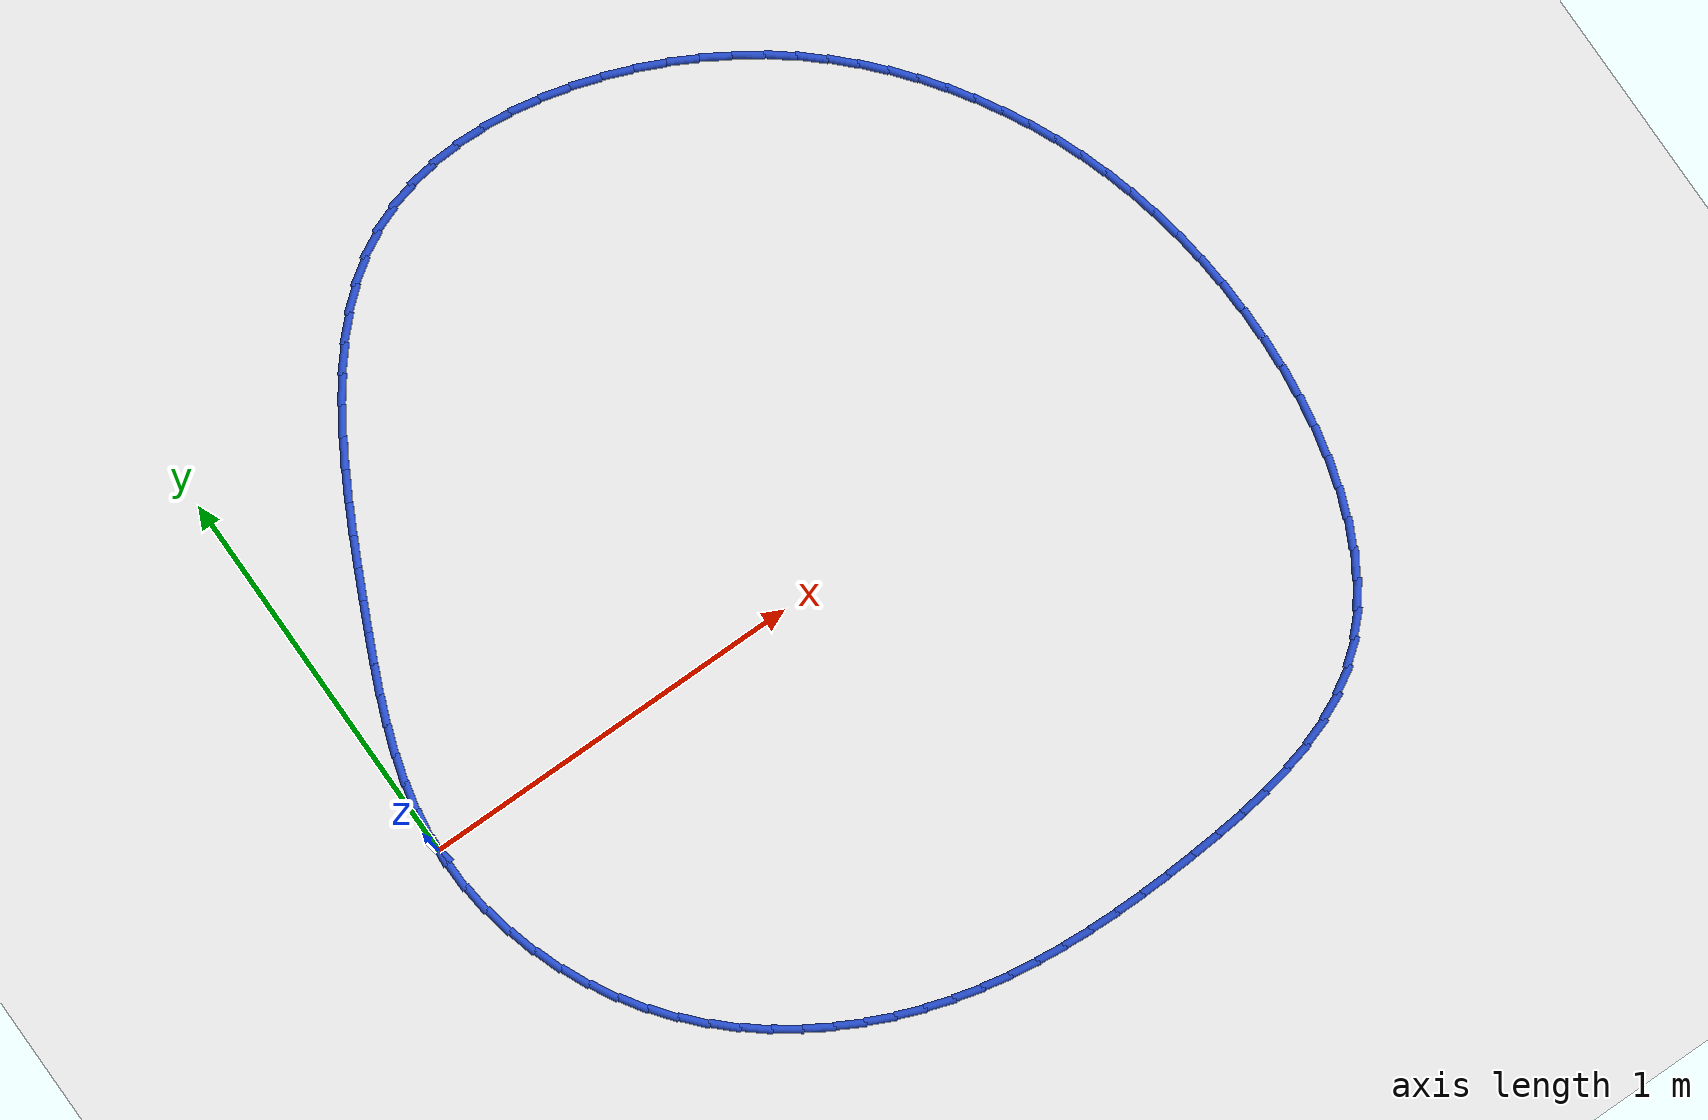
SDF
<sdf version="1.6">
 <world name="default">
  <light name="sun" type="directional">
   <pose>0 0 10 0 -0 0</pose>
   <diffuse>0.8 0.8 0.8 1</diffuse>
   <specular>0.2 0.2 0.2 1</specular>
   <attenuation>
    <range>1000</range>
    <constant>0.9</constant>
    <linear>0.01</linear>
    <quadratic>0.001</quadratic>
   </attenuation>
   <direction>-0.5 0.1 -0.9</direction>
  </light>
  <model name="ground_plane">
   <static>1</static>
   <link name="link">
    <collision name="collision">
     <geometry><plane><normal>0 0 1</normal><size>100 100</size></plane></geometry>
     <surface><friction><ode><mu>100</mu><mu2>50</mu2></ode></friction></surface>
    </collision>
    <visual name="visual">
     <cast_shadows>0</cast_shadows>
     <geometry><plane><normal>0 0 1</normal><size>100 100</size></plane></geometry>
     <material>
      <script><uri>file://media/materials/scripts/gazebo.material</uri><name>Gazebo/WhiteGlow</name></script>
     </material>
    </visual>
   </link>
  </model>
  <gravity>0 0 -9.8</gravity>
  <magnetic_field>6e-06 2.3e-05 -4.2e-05</magnetic_field>
  <atmosphere type="adiabatic"/>
  <physics name="default_physics" default="0" type="ode">
   <max_step_size>0.001</max_step_size>
   <real_time_factor>1</real_time_factor>
   <real_time_update_rate>1000</real_time_update_rate>
  </physics>
  <scene><ambient>0.4 0.4 0.4 1</ambient><background>0.7 0.7 0.7 1</background><shadows>1</shadows></scene>
  <spherical_coordinates>
   <surface_model>EARTH_WGS84</surface_model>
   <latitude_deg>0</latitude_deg>
   <longitude_deg>0</longitude_deg>
   <elevation>0</elevation>
   <heading_deg>0</heading_deg>
  </spherical_coordinates>
  <model name="line">
   <link name="link_0">
    <pose>9.71445146547012e-17 -8.326672684688674e-17 0.01 0 1.57 1.4866478548702864</pose>
    <collision name="collision">
     <geometry><cylinder><radius>0.01</radius><length>0.08</length></cylinder></geometry>
    </collision>
    <visual name="visual">
     <material>
      <script><name>Gazebo/Blue</name><uri>file://media/materials/scripts/gazebo.material</uri></script>
     </material>
     <geometry><cylinder><radius>0.01</radius><length>0.08</length></cylinder></geometry>
    </visual>
   </link>
   <link name="link_1">
    <pose>0.005993046967732487 0.07105173308109611 0.01 0 1.57 1.4015986962122502</pose>
    <collision name="collision">
     <geometry><cylinder><radius>0.01</radius><length>0.08</length></cylinder></geometry>
    </collision>
    <visual name="visual">
     <material>
      <script><name>Gazebo/Blue</name><uri>file://media/materials/scripts/gazebo.material</uri></script>
     </material>
     <geometry><cylinder><radius>0.01</radius><length>0.08</length></cylinder></geometry>
    </visual>
   </link>
   <link name="link_2">
    <pose>0.01796786469366333 0.14114921584021753 0.01 0 1.57 1.3272505205238498</pose>
    <collision name="collision">
     <geometry><cylinder><radius>0.01</radius><length>0.08</length></cylinder></geometry>
    </collision>
    <visual name="visual">
     <material>
      <script><name>Gazebo/Blue</name><uri>file://media/materials/scripts/gazebo.material</uri></script>
     </material>
     <geometry><cylinder><radius>0.01</radius><length>0.08</length></cylinder></geometry>
    </visual>
   </link>
   <link name="link_3">
    <pose>0.03520866146708669 0.21053478517167437 0.01 0 1.57 1.2645475346408444</pose>
    <collision name="collision">
     <geometry><cylinder><radius>0.01</radius><length>0.08</length></cylinder></geometry>
    </collision>
    <visual name="visual">
     <material>
      <script><name>Gazebo/Blue</name><uri>file://media/materials/scripts/gazebo.material</uri></script>
     </material>
     <geometry><cylinder><radius>0.01</radius><length>0.08</length></cylinder></geometry>
    </visual>
   </link>
   <link name="link_4">
    <pose>0.056999645577296726 0.279450777969777 0.01 0 1.57 1.2137230448544736</pose>
    <collision name="collision">
     <geometry><cylinder><radius>0.01</radius><length>0.08</length></cylinder></geometry>
    </collision>
    <visual name="visual">
     <material>
      <script><name>Gazebo/Blue</name><uri>file://media/materials/scripts/gazebo.material</uri></script>
     </material>
     <geometry><cylinder><radius>0.01</radius><length>0.08</length></cylinder></geometry>
    </visual>
   </link>
   <link name="link_5">
    <pose>0.08262502531358754 0.34813953112883583 0.01 0 1.57 1.174550342355736</pose>
    <collision name="collision">
     <geometry><cylinder><radius>0.01</radius><length>0.08</length></cylinder></geometry>
    </collision>
    <visual name="visual">
     <material>
      <script><name>Gazebo/Blue</name><uri>file://media/materials/scripts/gazebo.material</uri></script>
     </material>
     <geometry><cylinder><radius>0.01</radius><length>0.08</length></cylinder></geometry>
    </visual>
   </link>
   <link name="link_6">
    <pose>0.11136900896525315 0.4168433815431606 0.01 0 1.57 1.1465659076733152</pose>
    <collision name="collision">
     <geometry><cylinder><radius>0.01</radius><length>0.08</length></cylinder></geometry>
    </collision>
    <visual name="visual">
     <material>
      <script><name>Gazebo/Blue</name><uri>file://media/materials/scripts/gazebo.material</uri></script>
     </material>
     <geometry><cylinder><radius>0.01</radius><length>0.08</length></cylinder></geometry>
    </visual>
   </link>
   <link name="link_7">
    <pose>0.1425158048215878 0.4858046661070621 0.01 0 1.57 1.1292312527885653</pose>
    <collision name="collision">
     <geometry><cylinder><radius>0.01</radius><length>0.08</length></cylinder></geometry>
    </collision>
    <visual name="visual">
     <material>
      <script><name>Gazebo/Blue</name><uri>file://media/materials/scripts/gazebo.material</uri></script>
     </material>
     <geometry><cylinder><radius>0.01</radius><length>0.08</length></cylinder></geometry>
    </visual>
   </link>
   <link name="link_8">
    <pose>0.17534962117188546 0.5552657217148503 0.01 0 1.57 1.1216077876428645</pose>
    <collision name="collision">
     <geometry><cylinder><radius>0.01</radius><length>0.08</length></cylinder></geometry>
    </collision>
    <visual name="visual">
     <material>
      <script><name>Gazebo/Blue</name><uri>file://media/materials/scripts/gazebo.material</uri></script>
     </material>
     <geometry><cylinder><radius>0.01</radius><length>0.08</length></cylinder></geometry>
    </visual>
   </link>
   <link name="link_9">
    <pose>0.2091798786057385 0.6254450209490037 0.01 0 1.57 1.1150377904198732</pose>
    <collision name="collision">
     <geometry><cylinder><radius>0.01</radius><length>0.08</length></cylinder></geometry>
    </collision>
    <visual name="visual">
     <material>
      <script><name>Gazebo/Blue</name><uri>file://media/materials/scripts/gazebo.material</uri></script>
     </material>
     <geometry><cylinder><radius>0.01</radius><length>0.08</length></cylinder></geometry>
    </visual>
   </link>
   <link name="link_10">
    <pose>0.24381008606908058 0.696093364721075 0.01 0 1.57 1.1018985038633107</pose>
    <collision name="collision">
     <geometry><cylinder><radius>0.01</radius><length>0.08</length></cylinder></geometry>
    </collision>
    <visual name="visual">
     <material>
      <script><name>Gazebo/Blue</name><uri>file://media/materials/scripts/gazebo.material</uri></script>
     </material>
     <geometry><cylinder><radius>0.01</radius><length>0.08</length></cylinder></geometry>
    </visual>
   </link>
   <link name="link_11">
    <pose>0.2794944115478817 0.7665349896175002 0.01 0 1.57 1.081743589944259</pose>
    <collision name="collision">
     <geometry><cylinder><radius>0.01</radius><length>0.08</length></cylinder></geometry>
    </collision>
    <visual name="visual">
     <material>
      <script><name>Gazebo/Blue</name><uri>file://media/materials/scripts/gazebo.material</uri></script>
     </material>
     <geometry><cylinder><radius>0.01</radius><length>0.08</length></cylinder></geometry>
    </visual>
   </link>
   <link name="link_12">
    <pose>0.3165035264108373 0.8360785112037452 0.01 0 1.57 1.0541642760594225</pose>
    <collision name="collision">
     <geometry><cylinder><radius>0.01</radius><length>0.08</length></cylinder></geometry>
    </collision>
    <visual name="visual">
     <material>
      <script><name>Gazebo/Blue</name><uri>file://media/materials/scripts/gazebo.material</uri></script>
     </material>
     <geometry><cylinder><radius>0.01</radius><length>0.08</length></cylinder></geometry>
    </visual>
   </link>
   <link name="link_13">
    <pose>0.3551081020266431 0.9040325450452766 0.01 0 1.57 1.0185180773923552</pose>
    <collision name="collision">
     <geometry><cylinder><radius>0.01</radius><length>0.08</length></cylinder></geometry>
    </collision>
    <visual name="visual">
     <material>
      <script><name>Gazebo/Blue</name><uri>file://media/materials/scripts/gazebo.material</uri></script>
     </material>
     <geometry><cylinder><radius>0.01</radius><length>0.08</length></cylinder></geometry>
    </visual>
   </link>
   <link name="link_14">
    <pose>0.3955788097639943 0.9697057067075598 0.01 0 1.57 0.9739371436720542</pose>
    <collision name="collision">
     <geometry><cylinder><radius>0.01</radius><length>0.08</length></cylinder></geometry>
    </collision>
    <visual name="visual">
     <material>
      <script><name>Gazebo/Blue</name><uri>file://media/materials/scripts/gazebo.material</uri></script>
     </material>
     <geometry><cylinder><radius>0.01</radius><length>0.08</length></cylinder></geometry>
    </visual>
   </link>
   <link name="link_15">
    <pose>0.43818632099158633 1.0324066117560615 0.01 0 1.57 0.9193530361669444</pose>
    <collision name="collision">
     <geometry><cylinder><radius>0.01</radius><length>0.08</length></cylinder></geometry>
    </collision>
    <visual name="visual">
     <material>
      <script><name>Gazebo/Blue</name><uri>file://media/materials/scripts/gazebo.material</uri></script>
     </material>
     <geometry><cylinder><radius>0.01</radius><length>0.08</length></cylinder></geometry>
    </visual>
   </link>
   <link name="link_16">
    <pose>0.48320130707811504 1.091443875756248 0.01 0 1.57 0.8535618080151993</pose>
    <collision name="collision">
     <geometry><cylinder><radius>0.01</radius><length>0.08</length></cylinder></geometry>
    </collision>
    <visual name="visual">
     <material>
      <script><name>Gazebo/Blue</name><uri>file://media/materials/scripts/gazebo.material</uri></script>
     </material>
     <geometry><cylinder><radius>0.01</radius><length>0.08</length></cylinder></geometry>
    </visual>
   </link>
   <link name="link_17">
    <pose>0.5308944393922758 1.146126114273585 0.01 0 1.57 0.775365157420219</pose>
    <collision name="collision">
     <geometry><cylinder><radius>0.01</radius><length>0.08</length></cylinder></geometry>
    </collision>
    <visual name="visual">
     <material>
      <script><name>Gazebo/Blue</name><uri>file://media/materials/scripts/gazebo.material</uri></script>
     </material>
     <geometry><cylinder><radius>0.01</radius><length>0.08</length></cylinder></geometry>
    </visual>
   </link>
   <link name="link_18">
    <pose>0.5815363893027636 1.1957619428735387 0.01 0 1.57 0.6838313230106244</pose>
    <collision name="collision">
     <geometry><cylinder><radius>0.01</radius><length>0.08</length></cylinder></geometry>
    </collision>
    <visual name="visual">
     <material>
      <script><name>Gazebo/Blue</name><uri>file://media/materials/scripts/gazebo.material</uri></script>
     </material>
     <geometry><cylinder><radius>0.01</radius><length>0.08</length></cylinder></geometry>
    </visual>
   </link>
   <link name="link_19">
    <pose>0.6353978281782746 1.2396599771215755 0.01 0 1.57 0.5787044840958211</pose>
    <collision name="collision">
     <geometry><cylinder><radius>0.01</radius><length>0.08</length></cylinder></geometry>
    </collision>
    <visual name="visual">
     <material>
      <script><name>Gazebo/Blue</name><uri>file://media/materials/scripts/gazebo.material</uri></script>
     </material>
     <geometry><cylinder><radius>0.01</radius><length>0.08</length></cylinder></geometry>
    </visual>
   </link>
   <link name="link_20">
    <pose>0.6927494273875041 1.2771288325831616 0.01 0 1.57 0.4609276006622969</pose>
    <collision name="collision">
     <geometry><cylinder><radius>0.01</radius><length>0.08</length></cylinder></geometry>
    </collision>
    <visual name="visual">
     <material>
      <script><name>Gazebo/Blue</name><uri>file://media/materials/scripts/gazebo.material</uri></script>
     </material>
     <geometry><cylinder><radius>0.01</radius><length>0.08</length></cylinder></geometry>
    </visual>
   </link>
   <link name="link_21">
    <pose>0.7538616121994801 1.3074774246134573 0.01 0 1.57 0.33738711123204745</pose>
    <collision name="collision">
     <geometry><cylinder><radius>0.01</radius><length>0.08</length></cylinder></geometry>
    </collision>
    <visual name="visual">
     <material>
      <script><name>Gazebo/Blue</name><uri>file://media/materials/scripts/gazebo.material</uri></script>
     </material>
     <geometry><cylinder><radius>0.01</radius><length>0.08</length></cylinder></geometry>
    </visual>
   </link>
   <link name="link_22">
    <pose>0.8188040558468972 1.3302592174216958 0.01 0 1.57 0.22259514378164574</pose>
    <collision name="collision">
     <geometry><cylinder><radius>0.01</radius><length>0.08</length></cylinder></geometry>
    </collision>
    <visual name="visual">
     <material>
      <script><name>Gazebo/Blue</name><uri>file://media/materials/scripts/gazebo.material</uri></script>
     </material>
     <geometry><cylinder><radius>0.01</radius><length>0.08</length></cylinder></geometry>
    </visual>
   </link>
   <link name="link_23">
    <pose>0.8870831030761551 1.345713901560342 0.01 0 1.57 0.11892733131502178</pose>
    <collision name="collision">
     <geometry><cylinder><radius>0.01</radius><length>0.08</length></cylinder></geometry>
    </collision>
    <visual name="visual">
     <material>
      <script><name>Gazebo/Blue</name><uri>file://media/materials/scripts/gazebo.material</uri></script>
     </material>
     <geometry><cylinder><radius>0.01</radius><length>0.08</length></cylinder></geometry>
    </visual>
   </link>
   <link name="link_24">
    <pose>0.9581070258900233 1.3542006362433436 0.01 0 1.57 0.025657385959883816</pose>
    <collision name="collision">
     <geometry><cylinder><radius>0.01</radius><length>0.08</length></cylinder></geometry>
    </collision>
    <visual name="visual">
     <material>
      <script><name>Gazebo/Blue</name><uri>file://media/materials/scripts/gazebo.material</uri></script>
     </material>
     <geometry><cylinder><radius>0.01</radius><length>0.08</length></cylinder></geometry>
    </visual>
   </link>
   <link name="link_25">
    <pose>1.0312840962912706 1.3560785806846472 0.01 0 1.57 -0.05842653458353683</pose>
    <collision name="collision">
     <geometry><cylinder><radius>0.01</radius><length>0.08</length></cylinder></geometry>
    </collision>
    <visual name="visual">
     <material>
      <script><name>Gazebo/Blue</name><uri>file://media/materials/scripts/gazebo.material</uri></script>
     </material>
     <geometry><cylinder><radius>0.01</radius><length>0.08</length></cylinder></geometry>
    </visual>
   </link>
   <link name="link_26">
    <pose>1.1060225862826671 1.3517068940982004 0.01 0 1.57 -0.13472773374425864</pose>
    <collision name="collision">
     <geometry><cylinder><radius>0.01</radius><length>0.08</length></cylinder></geometry>
    </collision>
    <visual name="visual">
     <material>
      <script><name>Gazebo/Blue</name><uri>file://media/materials/scripts/gazebo.material</uri></script>
     </material>
     <geometry><cylinder><radius>0.01</radius><length>0.08</length></cylinder></geometry>
    </visual>
   </link>
   <link name="link_27">
    <pose>1.1817307678669813 1.3414447356979504 0.01 0 1.57 -0.20466709717981502</pose>
    <collision name="collision">
     <geometry><cylinder><radius>0.01</radius><length>0.08</length></cylinder></geometry>
    </collision>
    <visual name="visual">
     <material>
      <script><name>Gazebo/Blue</name><uri>file://media/materials/scripts/gazebo.material</uri></script>
     </material>
     <geometry><cylinder><radius>0.01</radius><length>0.08</length></cylinder></geometry>
    </visual>
   </link>
   <link name="link_28">
    <pose>1.2578169130469827 1.3256512646978442 0.01 0 1.57 -0.2695999465474152</pose>
    <collision name="collision">
     <geometry><cylinder><radius>0.01</radius><length>0.08</length></cylinder></geometry>
    </collision>
    <visual name="visual">
     <material>
      <script><name>Gazebo/Blue</name><uri>file://media/materials/scripts/gazebo.material</uri></script>
     </material>
     <geometry><cylinder><radius>0.01</radius><length>0.08</length></cylinder></geometry>
    </visual>
   </link>
   <link name="link_29">
    <pose>1.33368929382544 1.3046856403118299 0.01 0 1.57 -0.3307907646073585</pose>
    <collision name="collision">
     <geometry><cylinder><radius>0.01</radius><length>0.08</length></cylinder></geometry>
    </collision>
    <visual name="visual">
     <material>
      <script><name>Gazebo/Blue</name><uri>file://media/materials/scripts/gazebo.material</uri></script>
     </material>
     <geometry><cylinder><radius>0.01</radius><length>0.08</length></cylinder></geometry>
    </visual>
   </link>
   <link name="link_30">
    <pose>1.4087561822051236 1.2789070217538532 0.01 0 1.57 -0.3894212843888721</pose>
    <collision name="collision">
     <geometry><cylinder><radius>0.01</radius><length>0.08</length></cylinder></geometry>
    </collision>
    <visual name="visual">
     <material>
      <script><name>Gazebo/Blue</name><uri>file://media/materials/scripts/gazebo.material</uri></script>
     </material>
     <geometry><cylinder><radius>0.01</radius><length>0.08</length></cylinder></geometry>
    </visual>
   </link>
   <link name="link_31">
    <pose>1.4824258501888021 1.2486745682378626 0.01 0 1.57 -0.4466168653425028</pose>
    <collision name="collision">
     <geometry><cylinder><radius>0.01</radius><length>0.08</length></cylinder></geometry>
    </collision>
    <visual name="visual">
     <material>
      <script><name>Gazebo/Blue</name><uri>file://media/materials/scripts/gazebo.material</uri></script>
     </material>
     <geometry><cylinder><radius>0.01</radius><length>0.08</length></cylinder></geometry>
    </visual>
   </link>
   <link name="link_32">
    <pose>1.5541065697792447 1.214347438977805 0.01 0 1.57 -0.5034832102987421</pose>
    <collision name="collision">
     <geometry><cylinder><radius>0.01</radius><length>0.08</length></cylinder></geometry>
    </collision>
    <visual name="visual">
     <material>
      <script><name>Gazebo/Blue</name><uri>file://media/materials/scripts/gazebo.material</uri></script>
     </material>
     <geometry><cylinder><radius>0.01</radius><length>0.08</length></cylinder></geometry>
    </visual>
   </link>
   <link name="link_33">
    <pose>1.6232066129792202 1.1762847931876275 0.01 0 1.57 -0.5611500715972598</pose>
    <collision name="collision">
     <geometry><cylinder><radius>0.01</radius><length>0.08</length></cylinder></geometry>
    </collision>
    <visual name="visual">
     <material>
      <script><name>Gazebo/Blue</name><uri>file://media/materials/scripts/gazebo.material</uri></script>
     </material>
     <geometry><cylinder><radius>0.01</radius><length>0.08</length></cylinder></geometry>
    </visual>
   </link>
   <link name="link_34">
    <pose>1.6891342518079324 1.1348457900769489 0.01 0 1.57 -0.6202660375087026</pose>
    <collision name="collision">
     <geometry><cylinder><radius>0.01</radius><length>0.08</length></cylinder></geometry>
    </collision>
    <visual name="visual">
     <material>
      <script><name>Gazebo/Blue</name><uri>file://media/materials/scripts/gazebo.material</uri></script>
     </material>
     <geometry><cylinder><radius>0.01</radius><length>0.08</length></cylinder></geometry>
    </visual>
   </link>
   <link name="link_35">
    <pose>1.751413402584575 1.090359125619958 0.01 0 1.57 -0.6792773614459525</pose>
    <collision name="collision">
     <geometry><cylinder><radius>0.01</radius><length>0.08</length></cylinder></geometry>
    </collision>
    <visual name="visual">
     <material>
      <script><name>Gazebo/Blue</name><uri>file://media/materials/scripts/gazebo.material</uri></script>
     </material>
     <geometry><cylinder><radius>0.01</radius><length>0.08</length></cylinder></geometry>
    </visual>
   </link>
   <link name="link_36">
    <pose>1.8100233364058327 1.043033545393023 0.01 0 1.57 -0.7373784680332427</pose>
    <collision name="collision">
     <geometry><cylinder><radius>0.01</radius><length>0.08</length></cylinder></geometry>
    </collision>
    <visual name="visual">
     <material>
      <script><name>Gazebo/Blue</name><uri>file://media/materials/scripts/gazebo.material</uri></script>
     </material>
     <geometry><cylinder><radius>0.01</radius><length>0.08</length></cylinder></geometry>
    </visual>
   </link>
   <link name="link_37">
    <pose>1.8650553855609642 0.9930482756058652 0.01 0 1.57 -0.7942454037379701</pose>
    <collision name="collision">
     <geometry><cylinder><radius>0.01</radius><length>0.08</length></cylinder></geometry>
    </collision>
    <visual name="visual">
     <material>
      <script><name>Gazebo/Blue</name><uri>file://media/materials/scripts/gazebo.material</uri></script>
     </material>
     <geometry><cylinder><radius>0.01</radius><length>0.08</length></cylinder></geometry>
    </visual>
   </link>
   <link name="link_38">
    <pose>1.916600882339227 0.9405825424682077 0.01 0 1.57 -0.8496011991407002</pose>
    <collision name="collision">
     <geometry><cylinder><radius>0.01</radius><length>0.08</length></cylinder></geometry>
    </collision>
    <visual name="visual">
     <material>
      <script><name>Gazebo/Blue</name><uri>file://media/materials/scripts/gazebo.material</uri></script>
     </material>
     <geometry><cylinder><radius>0.01</radius><length>0.08</length></cylinder></geometry>
    </visual>
   </link>
   <link name="link_39">
    <pose>1.964751159029879 0.8858155721897734 0.01 0 1.57 -0.9032216311856295</pose>
    <collision name="collision">
     <geometry><cylinder><radius>0.01</radius><length>0.08</length></cylinder></geometry>
    </collision>
    <visual name="visual">
     <material>
      <script><name>Gazebo/Blue</name><uri>file://media/materials/scripts/gazebo.material</uri></script>
     </material>
     <geometry><cylinder><radius>0.01</radius><length>0.08</length></cylinder></geometry>
    </visual>
   </link>
   <link name="link_40">
    <pose>2.0095975479221777 0.8289265909802844 0.01 0 1.57 -0.9549371886763022</pose>
    <collision name="collision">
     <geometry><cylinder><radius>0.01</radius><length>0.08</length></cylinder></geometry>
    </collision>
    <visual name="visual">
     <material>
      <script><name>Gazebo/Blue</name><uri>file://media/materials/scripts/gazebo.material</uri></script>
     </material>
     <geometry><cylinder><radius>0.01</radius><length>0.08</length></cylinder></geometry>
    </visual>
   </link>
   <link name="link_41">
    <pose>2.0512313813053815 0.7700948250494639 0.01 0 1.57 -1.0046317267730323</pose>
    <collision name="collision">
     <geometry><cylinder><radius>0.01</radius><length>0.08</length></cylinder></geometry>
    </collision>
    <visual name="visual">
     <material>
      <script><name>Gazebo/Blue</name><uri>file://media/materials/scripts/gazebo.material</uri></script>
     </material>
     <geometry><cylinder><radius>0.01</radius><length>0.08</length></cylinder></geometry>
    </visual>
   </link>
   <link name="link_42">
    <pose>2.0897439914687483 0.7094995006070348 0.01 0 1.57 -1.0527215665287435</pose>
    <collision name="collision">
     <geometry><cylinder><radius>0.01</radius><length>0.08</length></cylinder></geometry>
    </collision>
    <visual name="visual">
     <material>
      <script><name>Gazebo/Blue</name><uri>file://media/materials/scripts/gazebo.material</uri></script>
     </material>
     <geometry><cylinder><radius>0.01</radius><length>0.08</length></cylinder></geometry>
    </visual>
   </link>
   <link name="link_43">
    <pose>2.1252087228738508 0.6472815748185077 0.01 0 1.57 -1.1014491710137335</pose>
    <collision name="collision">
     <geometry><cylinder><radius>0.01</radius><length>0.08</length></cylinder></geometry>
    </collision>
    <visual name="visual">
     <material>
      <script><name>Gazebo/Blue</name><uri>file://media/materials/scripts/gazebo.material</uri></script>
     </material>
     <geometry><cylinder><radius>0.01</radius><length>0.08</length></cylinder></geometry>
    </visual>
   </link>
   <link name="link_44">
    <pose>2.1576097947373034 0.5833923911839962 0.01 0 1.57 -1.1511940503896492</pose>
    <collision name="collision">
     <geometry><cylinder><radius>0.01</radius><length>0.08</length></cylinder></geometry>
    </collision>
    <visual name="visual">
     <material>
      <script><name>Gazebo/Blue</name><uri>file://media/materials/scripts/gazebo.material</uri></script>
     </material>
     <geometry><cylinder><radius>0.01</radius><length>0.08</length></cylinder></geometry>
    </visual>
   </link>
   <link name="link_45">
    <pose>2.18690387348618 0.5177246747345333 0.01 0 1.57 -1.2015400954967146</pose>
    <collision name="collision">
     <geometry><cylinder><radius>0.01</radius><length>0.08</length></cylinder></geometry>
    </collision>
    <visual name="visual">
     <material>
      <script><name>Gazebo/Blue</name><uri>file://media/materials/scripts/gazebo.material</uri></script>
     </material>
     <geometry><cylinder><radius>0.01</radius><length>0.08</length></cylinder></geometry>
    </visual>
   </link>
   <link name="link_46">
    <pose>2.2130476174653255 0.45017113330623115 0.01 0 1.57 -1.252053042481712</pose>
    <collision name="collision">
     <geometry><cylinder><radius>0.01</radius><length>0.08</length></cylinder></geometry>
    </collision>
    <visual name="visual">
     <material>
      <script><name>Gazebo/Blue</name><uri>file://media/materials/scripts/gazebo.material</uri></script>
     </material>
     <geometry><cylinder><radius>0.01</radius><length>0.08</length></cylinder></geometry>
    </visual>
   </link>
   <link name="link_47">
    <pose>2.2359976850195844 0.3806244747352021 0.01 0 1.57 -1.3022989876997677</pose>
    <collision name="collision">
     <geometry><cylinder><radius>0.01</radius><length>0.08</length></cylinder></geometry>
    </collision>
    <visual name="visual">
     <material>
      <script><name>Gazebo/Blue</name><uri>file://media/materials/scripts/gazebo.material</uri></script>
     </material>
     <geometry><cylinder><radius>0.01</radius><length>0.08</length></cylinder></geometry>
    </visual>
   </link>
   <link name="link_48">
    <pose>2.2557107344938006 0.30897740685755876 0.01 0 1.57 -1.3518626446980488</pose>
    <collision name="collision">
     <geometry><cylinder><radius>0.01</radius><length>0.08</length></cylinder></geometry>
    </collision>
    <visual name="visual">
     <material>
      <script><name>Gazebo/Blue</name><uri>file://media/materials/scripts/gazebo.material</uri></script>
     </material>
     <geometry><cylinder><radius>0.01</radius><length>0.08</length></cylinder></geometry>
    </visual>
   </link>
   <link name="link_49">
    <pose>2.2721434242328185 0.23512263750941265 0.01 0 1.57 -1.4003636450146444</pose>
    <collision name="collision">
     <geometry><cylinder><radius>0.01</radius><length>0.08</length></cylinder></geometry>
    </collision>
    <visual name="visual">
     <material>
      <script><name>Gazebo/Blue</name><uri>file://media/materials/scripts/gazebo.material</uri></script>
     </material>
     <geometry><cylinder><radius>0.01</radius><length>0.08</length></cylinder></geometry>
    </visual>
   </link>
   <link name="link_50">
    <pose>2.2852523994780194 0.15895296241501966 0.01 0 1.57 -1.44752130773808</pose>
    <collision name="collision">
     <geometry><cylinder><radius>0.01</radius><length>0.08</length></cylinder></geometry>
    </collision>
    <visual name="visual">
     <material>
      <script><name>Gazebo/Blue</name><uri>file://media/materials/scripts/gazebo.material</uri></script>
     </material>
     <geometry><cylinder><radius>0.01</radius><length>0.08</length></cylinder></geometry>
    </visual>
   </link>
   <link name="link_51">
    <pose>2.294969892001746 0.08052492443398668 0.01 0 1.57 -1.4937810924593082</pose>
    <collision name="collision">
     <geometry><cylinder><radius>0.01</radius><length>0.08</length></cylinder></geometry>
    </collision>
    <visual name="visual">
     <material>
      <script><name>Gazebo/Blue</name><uri>file://media/materials/scripts/gazebo.material</uri></script>
     </material>
     <geometry><cylinder><radius>0.01</radius><length>0.08</length></cylinder></geometry>
    </visual>
   </link>
   <link name="link_52">
    <pose>2.3011530788389494 0.00039847699086812956 0.01 0 1.57 -1.5401083074277422</pose>
    <collision name="collision">
     <geometry><cylinder><radius>0.01</radius><length>0.08</length></cylinder></geometry>
    </collision>
    <visual name="visual">
     <material>
      <script><name>Gazebo/Blue</name><uri>file://media/materials/scripts/gazebo.material</uri></script>
     </material>
     <geometry><cylinder><radius>0.01</radius><length>0.08</length></cylinder></geometry>
    </visual>
   </link>
   <link name="link_53">
    <pose>2.30364476094601 -0.08077000259852435 0.01 0 1.57 1.554158342025841</pose>
    <collision name="collision">
     <geometry><cylinder><radius>0.01</radius><length>0.08</length></cylinder></geometry>
    </collision>
    <visual name="visual">
     <material>
      <script><name>Gazebo/Blue</name><uri>file://media/materials/scripts/gazebo.material</uri></script>
     </material>
     <geometry><cylinder><radius>0.01</radius><length>0.08</length></cylinder></geometry>
    </visual>
   </link>
   <link name="link_54">
    <pose>2.3022877392793077 -0.162324137018379 0.01 0 1.57 1.5049137214650257</pose>
    <collision name="collision">
     <geometry><cylinder><radius>0.01</radius><length>0.08</length></cylinder></geometry>
    </collision>
    <visual name="visual">
     <material>
      <script><name>Gazebo/Blue</name><uri>file://media/materials/scripts/gazebo.material</uri></script>
     </material>
     <geometry><cylinder><radius>0.01</radius><length>0.08</length></cylinder></geometry>
    </visual>
   </link>
   <link name="link_55">
    <pose>2.2969248147952217 -0.24360754895288422 0.01 0 1.57 1.4527996932908087</pose>
    <collision name="collision">
     <geometry><cylinder><radius>0.01</radius><length>0.08</length></cylinder></geometry>
    </collision>
    <visual name="visual">
     <material>
      <script><name>Gazebo/Blue</name><uri>file://media/materials/scripts/gazebo.material</uri></script>
     </material>
     <geometry><cylinder><radius>0.01</radius><length>0.08</length></cylinder></geometry>
    </visual>
   </link>
   <link name="link_56">
    <pose>2.287398788450132 -0.32396386108622827 0.01 0 1.57 1.396798392327544</pose>
    <collision name="collision">
     <geometry><cylinder><radius>0.01</radius><length>0.08</length></cylinder></geometry>
    </collision>
    <visual name="visual">
     <material>
      <script><name>Gazebo/Blue</name><uri>file://media/materials/scripts/gazebo.material</uri></script>
     </material>
     <geometry><cylinder><radius>0.01</radius><length>0.08</length></cylinder></geometry>
    </visual>
   </link>
   <link name="link_57">
    <pose>2.273552461200417 -0.40273669610259955 0.01 0 1.57 1.3357961101527491</pose>
    <collision name="collision">
     <geometry><cylinder><radius>0.01</radius><length>0.08</length></cylinder></geometry>
    </collision>
    <visual name="visual">
     <material>
      <script><name>Gazebo/Blue</name><uri>file://media/materials/scripts/gazebo.material</uri></script>
     </material>
     <geometry><cylinder><radius>0.01</radius><length>0.08</length></cylinder></geometry>
    </visual>
   </link>
   <link name="link_58">
    <pose>2.2552286340024588 -0.4792696766861855 0.01 0 1.57 1.2685667853508973</pose>
    <collision name="collision">
     <geometry><cylinder><radius>0.01</radius><length>0.08</length></cylinder></geometry>
    </collision>
    <visual name="visual">
     <material>
      <script><name>Gazebo/Blue</name><uri>file://media/materials/scripts/gazebo.material</uri></script>
     </material>
     <geometry><cylinder><radius>0.01</radius><length>0.08</length></cylinder></geometry>
    </visual>
   </link>
   <link name="link_59">
    <pose>2.2322701078126346 -0.5529064255211762 0.01 0 1.57 1.1937786845834872</pose>
    <collision name="collision">
     <geometry><cylinder><radius>0.01</radius><length>0.08</length></cylinder></geometry>
    </collision>
    <visual name="visual">
     <material>
      <script><name>Gazebo/Blue</name><uri>file://media/materials/scripts/gazebo.material</uri></script>
     </material>
     <geometry><cylinder><radius>0.01</radius><length>0.08</length></cylinder></geometry>
    </visual>
   </link>
   <link name="link_60">
    <pose>2.2045196835873244 -0.6229905652917591 0.01 0 1.57 1.1100438831878587</pose>
    <collision name="collision">
     <geometry><cylinder><radius>0.01</radius><length>0.08</length></cylinder></geometry>
    </collision>
    <visual name="visual">
     <material>
      <script><name>Gazebo/Blue</name><uri>file://media/materials/scripts/gazebo.material</uri></script>
     </material>
     <geometry><cylinder><radius>0.01</radius><length>0.08</length></cylinder></geometry>
    </visual>
   </link>
   <link name="link_61">
    <pose>2.17182016228291 -0.6888657186821225 0.01 0 1.57 1.0160404138753028</pose>
    <collision name="collision">
     <geometry><cylinder><radius>0.01</radius><length>0.08</length></cylinder></geometry>
    </collision>
    <visual name="visual">
     <material>
      <script><name>Gazebo/Blue</name><uri>file://media/materials/scripts/gazebo.material</uri></script>
     </material>
     <geometry><cylinder><radius>0.01</radius><length>0.08</length></cylinder></geometry>
    </visual>
   </link>
   <link name="link_62">
    <pose>2.134014344855768 -0.7498755083764549 0.01 0 1.57 0.910742731321366</pose>
    <collision name="collision">
     <geometry><cylinder><radius>0.01</radius><length>0.08</length></cylinder></geometry>
    </collision>
    <visual name="visual">
     <material>
      <script><name>Gazebo/Blue</name><uri>file://media/materials/scripts/gazebo.material</uri></script>
     </material>
     <geometry><cylinder><radius>0.01</radius><length>0.08</length></cylinder></geometry>
    </visual>
   </link>
   <link name="link_63">
    <pose>2.0909450322622805 -0.8053635570589445 0.01 0 1.57 0.7937816487683415</pose>
    <collision name="collision">
     <geometry><cylinder><radius>0.01</radius><length>0.08</length></cylinder></geometry>
    </collision>
    <visual name="visual">
     <material>
      <script><name>Gazebo/Blue</name><uri>file://media/materials/scripts/gazebo.material</uri></script>
     </material>
     <geometry><cylinder><radius>0.01</radius><length>0.08</length></cylinder></geometry>
    </visual>
   </link>
   <link name="link_64">
    <pose>2.0424550254588247 -0.8546734874137794 0.01 0 1.57 0.6658950533214167</pose>
    <collision name="collision">
     <geometry><cylinder><radius>0.01</radius><length>0.08</length></cylinder></geometry>
    </collision>
    <visual name="visual">
     <material>
      <script><name>Gazebo/Blue</name><uri>file://media/materials/scripts/gazebo.material</uri></script>
     </material>
     <geometry><cylinder><radius>0.01</radius><length>0.08</length></cylinder></geometry>
    </visual>
   </link>
   <link name="link_65">
    <pose>1.9883871254017826 -0.8971489221251483 0.01 0 1.57 0.5326475615077757</pose>
    <collision name="collision">
     <geometry><cylinder><radius>0.01</radius><length>0.08</length></cylinder></geometry>
    </collision>
    <visual name="visual">
     <material>
      <script><name>Gazebo/Blue</name><uri>file://media/materials/scripts/gazebo.material</uri></script>
     </material>
     <geometry><cylinder><radius>0.01</radius><length>0.08</length></cylinder></geometry>
    </visual>
   </link>
   <link name="link_66">
    <pose>1.92871505368096 -0.9323243560388027 0.01 0 1.57 0.41386662929988477</pose>
    <collision name="collision">
     <geometry><cylinder><radius>0.01</radius><length>0.08</length></cylinder></geometry>
    </collision>
    <visual name="visual">
     <material>
      <script><name>Gazebo/Blue</name><uri>file://media/materials/scripts/gazebo.material</uri></script>
     </material>
     <geometry><cylinder><radius>0.01</radius><length>0.08</length></cylinder></geometry>
    </visual>
   </link>
   <link name="link_67">
    <pose>1.8640836890730652 -0.9607127792892647 0.01 0 1.57 0.3154084085053055</pose>
    <collision name="collision">
     <geometry><cylinder><radius>0.01</radius><length>0.08</length></cylinder></geometry>
    </collision>
    <visual name="visual">
     <material>
      <script><name>Gazebo/Blue</name><uri>file://media/materials/scripts/gazebo.material</uri></script>
     </material>
     <geometry><cylinder><radius>0.01</radius><length>0.08</length></cylinder></geometry>
    </visual>
   </link>
   <link name="link_68">
    <pose>1.7953523973720518 -0.9831398874993923 0.01 0 1.57 0.23578676362070067</pose>
    <collision name="collision">
     <geometry><cylinder><radius>0.01</radius><length>0.08</length></cylinder></geometry>
    </collision>
    <visual name="visual">
     <material>
      <script><name>Gazebo/Blue</name><uri>file://media/materials/scripts/gazebo.material</uri></script>
     </material>
     <geometry><cylinder><radius>0.01</radius><length>0.08</length></cylinder></geometry>
    </visual>
   </link>
   <link name="link_69">
    <pose>1.723380639114054 -1.0004315144188163 0.01 0 1.57 0.17285735297588892</pose>
    <collision name="collision">
     <geometry><cylinder><radius>0.01</radius><length>0.08</length></cylinder></geometry>
    </collision>
    <visual name="visual">
     <material>
      <script><name>Gazebo/Blue</name><uri>file://media/materials/scripts/gazebo.material</uri></script>
     </material>
     <geometry><cylinder><radius>0.01</radius><length>0.08</length></cylinder></geometry>
    </visual>
   </link>
   <link name="link_70">
    <pose>1.6490278748352052 -1.0134134937971664 0.01 0 1.57 0.12453506957543835</pose>
    <collision name="collision">
     <geometry><cylinder><radius>0.01</radius><length>0.08</length></cylinder></geometry>
    </collision>
    <visual name="visual">
     <material>
      <script><name>Gazebo/Blue</name><uri>file://media/materials/scripts/gazebo.material</uri></script>
     </material>
     <geometry><cylinder><radius>0.01</radius><length>0.08</length></cylinder></geometry>
    </visual>
   </link>
   <link name="link_71">
    <pose>1.573153565071641 -1.0229116593840735 0.01 0 1.57 0.08913485962055138</pose>
    <collision name="collision">
     <geometry><cylinder><radius>0.01</radius><length>0.08</length></cylinder></geometry>
    </collision>
    <visual name="visual">
     <material>
      <script><name>Gazebo/Blue</name><uri>file://media/materials/scripts/gazebo.material</uri></script>
     </material>
     <geometry><cylinder><radius>0.01</radius><length>0.08</length></cylinder></geometry>
    </visual>
   </link>
   <link name="link_72">
    <pose>1.4966171703594922 -1.0297518449291678 0.01 0 1.57 0.06512047266519842</pose>
    <collision name="collision">
     <geometry><cylinder><radius>0.01</radius><length>0.08</length></cylinder></geometry>
    </collision>
    <visual name="visual">
     <material>
      <script><name>Gazebo/Blue</name><uri>file://media/materials/scripts/gazebo.material</uri></script>
     </material>
     <geometry><cylinder><radius>0.01</radius><length>0.08</length></cylinder></geometry>
    </visual>
   </link>
   <link name="link_73">
    <pose>1.4202566968743828 -1.0347315161035642 0.01 0 1.57 0.04442467139405533</pose>
    <collision name="collision">
     <geometry><cylinder><radius>0.01</radius><length>0.08</length></cylinder></geometry>
    </collision>
    <visual name="visual">
     <material>
      <script><name>Gazebo/Blue</name><uri>file://media/materials/scripts/gazebo.material</uri></script>
     </material>
     <geometry><cylinder><radius>0.01</radius><length>0.08</length></cylinder></geometry>
    </visual>
   </link>
   <link name="link_74">
    <pose>1.3444951580373652 -1.0380994134351278 0.01 0 1.57 0.020076415426439436</pose>
    <collision name="collision">
     <geometry><cylinder><radius>0.01</radius><length>0.08</length></cylinder></geometry>
    </collision>
    <visual name="visual">
     <material>
      <script><name>Gazebo/Blue</name><uri>file://media/materials/scripts/gazebo.material</uri></script>
     </material>
     <geometry><cylinder><radius>0.01</radius><length>0.08</length></cylinder></geometry>
    </visual>
   </link>
   <link name="link_75">
    <pose>1.2693799824548775 -1.039607659549525 0.01 0 1.57 -0.0082915697423918</pose>
    <collision name="collision">
     <geometry><cylinder><radius>0.01</radius><length>0.08</length></cylinder></geometry>
    </collision>
    <visual name="visual">
     <material>
      <script><name>Gazebo/Blue</name><uri>file://media/materials/scripts/gazebo.material</uri></script>
     </material>
     <geometry><cylinder><radius>0.01</radius><length>0.08</length></cylinder></geometry>
    </visual>
   </link>
   <link name="link_76">
    <pose>1.1949450505659762 -1.0389904629763185 0.01 0 1.57 -0.040785803644382876</pose>
    <collision name="collision">
     <geometry><cylinder><radius>0.01</radius><length>0.08</length></cylinder></geometry>
    </collision>
    <visual name="visual">
     <material>
      <script><name>Gazebo/Blue</name><uri>file://media/materials/scripts/gazebo.material</uri></script>
     </material>
     <geometry><cylinder><radius>0.01</radius><length>0.08</length></cylinder></geometry>
    </visual>
   </link>
   <link name="link_77">
    <pose>1.121224242809717 -1.0359820322450723 0.01 0 1.57 -0.07748248638997972</pose>
    <collision name="collision">
     <geometry><cylinder><radius>0.01</radius><length>0.08</length></cylinder></geometry>
    </collision>
    <visual name="visual">
     <material>
      <script><name>Gazebo/Blue</name><uri>file://media/materials/scripts/gazebo.material</uri></script>
     </material>
     <geometry><cylinder><radius>0.01</radius><length>0.08</length></cylinder></geometry>
    </visual>
   </link>
   <link name="link_78">
    <pose>1.0482514396251563 -1.0303165758853494 0.01 0 1.57 -0.11840959856438937</pose>
    <collision name="collision">
     <geometry><cylinder><radius>0.01</radius><length>0.08</length></cylinder></geometry>
    </collision>
    <visual name="visual">
     <material>
      <script><name>Gazebo/Blue</name><uri>file://media/materials/scripts/gazebo.material</uri></script>
     </material>
     <geometry><cylinder><radius>0.01</radius><length>0.08</length></cylinder></geometry>
    </visual>
   </link>
   <link name="link_79">
    <pose>0.9760605214513507 -1.0217283024267132 0.01 0 1.57 -0.16352637097749342</pose>
    <collision name="collision">
     <geometry><cylinder><radius>0.01</radius><length>0.08</length></cylinder></geometry>
    </collision>
    <visual name="visual">
     <material>
      <script><name>Gazebo/Blue</name><uri>file://media/materials/scripts/gazebo.material</uri></script>
     </material>
     <geometry><cylinder><radius>0.01</radius><length>0.08</length></cylinder></geometry>
    </visual>
   </link>
   <link name="link_80">
    <pose>0.9046853687273562 -1.0099514203987277 0.01 0 1.57 -0.21270160532588409</pose>
    <collision name="collision">
     <geometry><cylinder><radius>0.01</radius><length>0.08</length></cylinder></geometry>
    </collision>
    <visual name="visual">
     <material>
      <script><name>Gazebo/Blue</name><uri>file://media/materials/scripts/gazebo.material</uri></script>
     </material>
     <geometry><cylinder><radius>0.01</radius><length>0.08</length></cylinder></geometry>
    </visual>
   </link>
   <link name="link_81">
    <pose>0.8341598618922288 -0.9947201383309561 0.01 0 1.57 -0.26569338702674655</pose>
    <collision name="collision">
     <geometry><cylinder><radius>0.01</radius><length>0.08</length></cylinder></geometry>
    </collision>
    <visual name="visual">
     <material>
      <script><name>Gazebo/Blue</name><uri>file://media/materials/scripts/gazebo.material</uri></script>
     </material>
     <geometry><cylinder><radius>0.01</radius><length>0.08</length></cylinder></geometry>
    </visual>
   </link>
   <link name="link_82">
    <pose>0.7645178813850253 -0.9757686647529613 0.01 0 1.57 -0.32213375670170125</pose>
    <collision name="collision">
     <geometry><cylinder><radius>0.01</radius><length>0.08</length></cylinder></geometry>
    </collision>
    <visual name="visual">
     <material>
      <script><name>Gazebo/Blue</name><uri>file://media/materials/scripts/gazebo.material</uri></script>
     </material>
     <geometry><cylinder><radius>0.01</radius><length>0.08</length></cylinder></geometry>
    </visual>
   </link>
   <link name="link_83">
    <pose>0.695793307644802 -0.9528312081943078 0.01 0 1.57 -0.3812693677715392</pose>
    <collision name="collision">
     <geometry><cylinder><radius>0.01</radius><length>0.08</length></cylinder></geometry>
    </collision>
    <visual name="visual">
     <material>
      <script><name>Gazebo/Blue</name><uri>file://media/materials/scripts/gazebo.material</uri></script>
     </material>
     <geometry><cylinder><radius>0.01</radius><length>0.08</length></cylinder></geometry>
    </visual>
   </link>
   <link name="link_84">
    <pose>0.6280724491733021 -0.925682908852104 0.01 0 1.57 -0.441665451559036</pose>
    <collision name="collision">
     <geometry><cylinder><radius>0.01</radius><length>0.08</length></cylinder></geometry>
    </collision>
    <visual name="visual">
     <material>
      <script><name>Gazebo/Blue</name><uri>file://media/materials/scripts/gazebo.material</uri></script>
     </material>
     <geometry><cylinder><radius>0.01</radius><length>0.08</length></cylinder></geometry>
    </visual>
   </link>
   <link name="link_85">
    <pose>0.561700885816622 -0.8943013253979821 0.01 0 1.57 -0.5033977539027076</pose>
    <collision name="collision">
     <geometry><cylinder><radius>0.01</radius><length>0.08</length></cylinder></geometry>
    </collision>
    <visual name="visual">
     <material>
      <script><name>Gazebo/Blue</name><uri>file://media/materials/scripts/gazebo.material</uri></script>
     </material>
     <geometry><cylinder><radius>0.01</radius><length>0.08</length></cylinder></geometry>
    </visual>
   </link>
   <link name="link_86">
    <pose>0.49710420048546516 -0.8587264765426302 0.01 0 1.57 -0.5669733387639255</pose>
    <collision name="collision">
     <geometry><cylinder><radius>0.01</radius><length>0.08</length></cylinder></geometry>
    </collision>
    <visual name="visual">
     <material>
      <script><name>Gazebo/Blue</name><uri>file://media/materials/scripts/gazebo.material</uri></script>
     </material>
     <geometry><cylinder><radius>0.01</radius><length>0.08</length></cylinder></geometry>
    </visual>
   </link>
   <link name="link_87">
    <pose>0.43470799897775275 -0.818998398865259 0.01 0 1.57 -0.632856042317866</pose>
    <collision name="collision">
     <geometry><cylinder><radius>0.01</radius><length>0.08</length></cylinder></geometry>
    </collision>
    <visual name="visual">
     <material>
      <script><name>Gazebo/Blue</name><uri>file://media/materials/scripts/gazebo.material</uri></script>
     </material>
     <geometry><cylinder><radius>0.01</radius><length>0.08</length></cylinder></geometry>
    </visual>
   </link>
   <link name="link_88">
    <pose>0.37493788709140646 -0.7751571289450802 0.01 0 1.57 -0.701454139782162</pose>
    <collision name="collision">
     <geometry><cylinder><radius>0.01</radius><length>0.08</length></cylinder></geometry>
    </collision>
    <visual name="visual">
     <material>
      <script><name>Gazebo/Blue</name><uri>file://media/materials/scripts/gazebo.material</uri></script>
     </material>
     <geometry><cylinder><radius>0.01</radius><length>0.08</length></cylinder></geometry>
    </visual>
   </link>
   <link name="link_89">
    <pose>0.3182194706243473 -0.7272427033613038 0.01 0 1.57 -0.7731011593378018</pose>
    <collision name="collision">
     <geometry><cylinder><radius>0.01</radius><length>0.08</length></cylinder></geometry>
    </collision>
    <visual name="visual">
     <material>
      <script><name>Gazebo/Blue</name><uri>file://media/materials/scripts/gazebo.material</uri></script>
     </material>
     <geometry><cylinder><radius>0.01</radius><length>0.08</length></cylinder></geometry>
    </visual>
   </link>
   <link name="link_90">
    <pose>0.2649783553744969 -0.6752951586931408 0.01 0 1.57 -0.8480297788520105</pose>
    <collision name="collision">
     <geometry><cylinder><radius>0.01</radius><length>0.08</length></cylinder></geometry>
    </collision>
    <visual name="visual">
     <material>
      <script><name>Gazebo/Blue</name><uri>file://media/materials/scripts/gazebo.material</uri></script>
     </material>
     <geometry><cylinder><radius>0.01</radius><length>0.08</length></cylinder></geometry>
    </visual>
   </link>
   <link name="link_91">
    <pose>0.2156401471397764 -0.6193545315198024 0.01 0 1.57 -0.9262334466502978</pose>
    <collision name="collision">
     <geometry><cylinder><radius>0.01</radius><length>0.08</length></cylinder></geometry>
    </collision>
    <visual name="visual">
     <material>
      <script><name>Gazebo/Blue</name><uri>file://media/materials/scripts/gazebo.material</uri></script>
     </material>
     <geometry><cylinder><radius>0.01</radius><length>0.08</length></cylinder></geometry>
    </visual>
   </link>
   <link name="link_92">
    <pose>0.1706275633793731 -0.5594703240754492 0.01 0 1.57 -1.004948133411359</pose>
    <collision name="collision">
     <geometry><cylinder><radius>0.01</radius><length>0.08</length></cylinder></geometry>
    </collision>
    <visual name="visual">
     <material>
      <script><name>Gazebo/Blue</name><uri>file://media/materials/scripts/gazebo.material</uri></script>
     </material>
     <geometry><cylinder><radius>0.01</radius><length>0.08</length></cylinder></geometry>
    </visual>
   </link>
   <link name="link_93">
    <pose>0.13028444948225137 -0.4959505179038496 0.01 0 1.57 -1.0818284019435775</pose>
    <collision name="collision">
     <geometry><cylinder><radius>0.01</radius><length>0.08</length></cylinder></geometry>
    </collision>
    <visual name="visual">
     <material>
      <script><name>Gazebo/Blue</name><uri>file://media/materials/scripts/gazebo.material</uri></script>
     </material>
     <geometry><cylinder><radius>0.01</radius><length>0.08</length></cylinder></geometry>
    </visual>
   </link>
   <link name="link_94">
    <pose>0.094868177987448 -0.42938648311060335 0.01 0 1.57 -1.1578033203646658</pose>
    <collision name="collision">
     <geometry><cylinder><radius>0.01</radius><length>0.08</length></cylinder></geometry>
    </collision>
    <visual name="visual">
     <material>
      <script><name>Gazebo/Blue</name><uri>file://media/materials/scripts/gazebo.material</uri></script>
     </material>
     <geometry><cylinder><radius>0.01</radius><length>0.08</length></cylinder></geometry>
    </visual>
   </link>
   <link name="link_95">
    <pose>0.06463170890447517 -0.3603840505297006 0.01 0 1.57 -1.2339774259443295</pose>
    <collision name="collision">
     <geometry><cylinder><radius>0.01</radius><length>0.08</length></cylinder></geometry>
    </collision>
    <visual name="visual">
     <material>
      <script><name>Gazebo/Blue</name><uri>file://media/materials/scripts/gazebo.material</uri></script>
     </material>
     <geometry><cylinder><radius>0.01</radius><length>0.08</length></cylinder></geometry>
    </visual>
   </link>
   <link name="link_96">
    <pose>0.03982800224284548 -0.28954905099513256 0.01 0 1.57 -1.311470227549667</pose>
    <collision name="collision">
     <geometry><cylinder><radius>0.01</radius><length>0.08</length></cylinder></geometry>
    </collision>
    <visual name="visual">
     <material>
      <script><name>Gazebo/Blue</name><uri>file://media/materials/scripts/gazebo.material</uri></script>
     </material>
     <geometry><cylinder><radius>0.01</radius><length>0.08</length></cylinder></geometry>
    </visual>
   </link>
   <link name="link_97">
    <pose>0.020710018012070636 -0.21748731534088772 0.01 0 1.57 -1.39141864434901</pose>
    <collision name="collision">
     <geometry><cylinder><radius>0.01</radius><length>0.08</length></cylinder></geometry>
    </collision>
    <visual name="visual">
     <material>
      <script><name>Gazebo/Blue</name><uri>file://media/materials/scripts/gazebo.material</uri></script>
     </material>
     <geometry><cylinder><radius>0.01</radius><length>0.08</length></cylinder></geometry>
    </visual>
   </link>
   <link name="link_98">
    <pose>0.007530716221663259 -0.14480467440095718 0.01 0 1.57 -1.4749713300793086</pose>
    <collision name="collision">
     <geometry><cylinder><radius>0.01</radius><length>0.08</length></cylinder></geometry>
    </collision>
    <visual name="visual">
     <material>
      <script><name>Gazebo/Blue</name><uri>file://media/materials/scripts/gazebo.material</uri></script>
     </material>
     <geometry><cylinder><radius>0.01</radius><length>0.08</length></cylinder></geometry>
    </visual>
   </link>
   <link name="link_99">
    <pose>0.0005430568811356402 -0.07210695900933117 0.01 0 1.57 -1.5632652005132037</pose>
    <collision name="collision">
     <geometry><cylinder><radius>0.01</radius><length>0.08</length></cylinder></geometry>
    </collision>
    <visual name="visual">
     <material>
      <script><name>Gazebo/Blue</name><uri>file://media/materials/scripts/gazebo.material</uri></script>
     </material>
     <geometry><cylinder><radius>0.01</radius><length>0.08</length></cylinder></geometry>
    </visual>
   </link>
   <link name="link_100">
    <pose>8.326672684688674e-17 -1.3877787807814457e-17 0.01 0 1.57 -1.373400766945016</pose>
    <collision name="collision">
     <geometry><cylinder><radius>0.01</radius><length>0.08</length></cylinder></geometry>
    </collision>
    <visual name="visual">
     <material>
      <script><name>Gazebo/Blue</name><uri>file://media/materials/scripts/gazebo.material</uri></script>
     </material>
     <geometry><cylinder><radius>0.01</radius><length>0.08</length></cylinder></geometry>
    </visual>
   </link>
  </model>
 </world>
</sdf>
